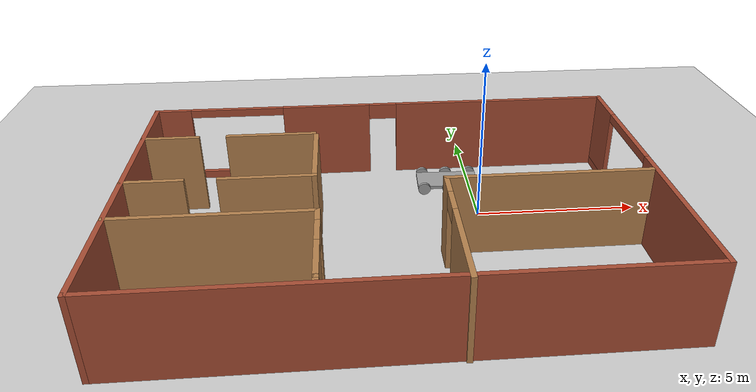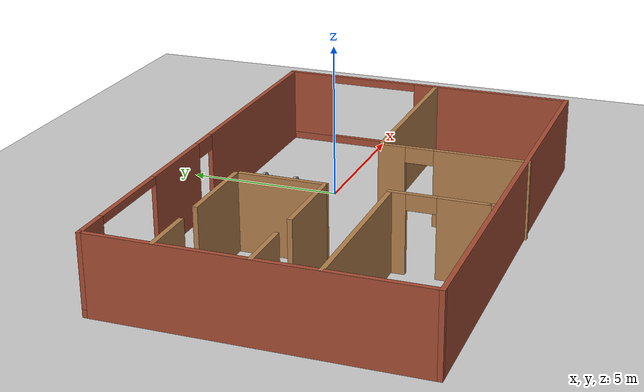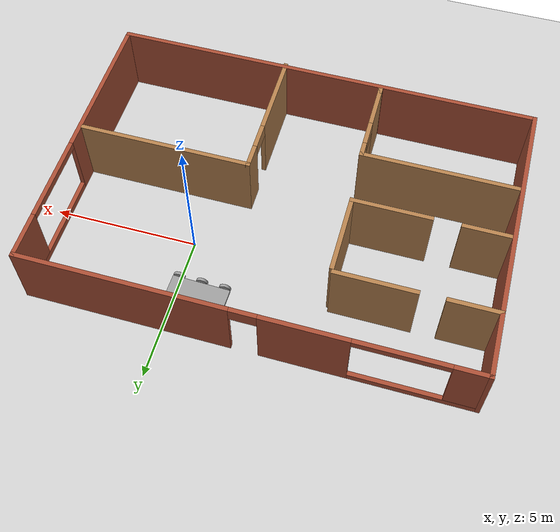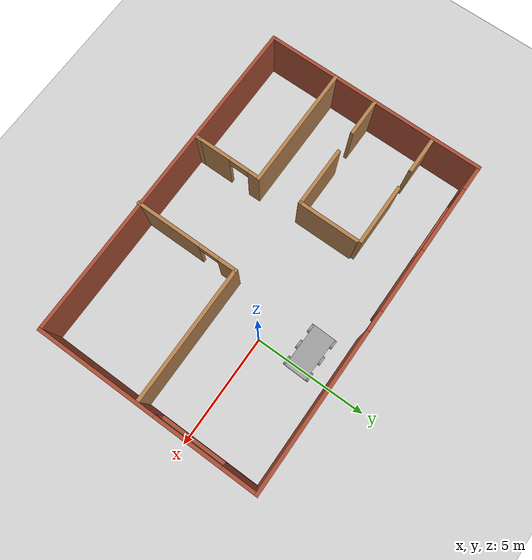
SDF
<sdf version="1.6">
 <world name="default">
  <model name="ground_plane">
   <static>1</static>
   <link name="link">
    <collision name="collision">
     <geometry><plane><normal>0 0 1</normal><size>100 100</size></plane></geometry>
     <surface><friction><ode><mu>100</mu><mu2>50</mu2></ode></friction></surface>
    </collision>
    <visual name="visual">
     <cast_shadows>0</cast_shadows>
     <geometry><plane><normal>0 0 1</normal><size>100 100</size></plane></geometry>
     <material>
      <script><uri>file://media/materials/scripts/gazebo.material</uri><name>Gazebo/Grey</name></script>
     </material>
    </visual>
   </link>
  </model>
  <model name="building">
   <pose>-2.80273 -1.68238 0 0 -0 0</pose>
   <link name="Wall_0">
    <pose>7.42489 0.032568 0 0 -0 1.5708</pose>
    <visual name="Wall_0_Visual_0">
     <pose>-2.30676 0 1.25 0 -0 0</pose>
     <geometry><box><size>5.38649 0.15 2.5</size></box></geometry>
     <material>
      <script><uri>file://media/materials/scripts/gazebo.material</uri><name>Gazebo/Bricks</name></script>
      <ambient>0.760784 0.662745 0.627451 1</ambient>
     </material>
     <meta><layer>0</layer></meta>
    </visual>
    <collision name="Wall_0_Collision_0">
     <geometry><box><size>5.38649 0.15 2.5</size></box></geometry>
     <pose>-2.30676 0 1.25 0 -0 0</pose>
    </collision>
    <visual name="Wall_0_Visual_1">
     <pose>2.69324 0 0.125 0 -0 0</pose>
     <geometry><box><size>4.61351 0.15 0.25</size></box></geometry>
     <material>
      <script><uri>file://media/materials/scripts/gazebo.material</uri><name>Gazebo/Bricks</name></script>
      <ambient>0.760784 0.662745 0.627451 1</ambient>
     </material>
     <meta><layer>0</layer></meta>
    </visual>
    <collision name="Wall_0_Collision_1">
     <geometry><box><size>4.61351 0.15 0.25</size></box></geometry>
     <pose>2.69324 0 0.125 0 -0 0</pose>
    </collision>
    <visual name="Wall_0_Visual_2">
     <pose>4.19324 0 1.375 0 -0 0</pose>
     <geometry><box><size>1.61351 0.15 2.25</size></box></geometry>
     <material>
      <script><uri>file://media/materials/scripts/gazebo.material</uri><name>Gazebo/Bricks</name></script>
      <ambient>0.760784 0.662745 0.627451 1</ambient>
     </material>
     <meta><layer>0</layer></meta>
    </visual>
    <collision name="Wall_0_Collision_2">
     <geometry><box><size>1.61351 0.15 2.25</size></box></geometry>
     <pose>4.19324 0 1.375 0 -0 0</pose>
    </collision>
    <visual name="Wall_0_Visual_3">
     <pose>1.88649 0 2.375 0 -0 0</pose>
     <geometry><box><size>3 0.15 0.25</size></box></geometry>
     <material>
      <script><uri>file://media/materials/scripts/gazebo.material</uri><name>Gazebo/Bricks</name></script>
      <ambient>0.760784 0.662745 0.627451 1</ambient>
     </material>
     <meta><layer>0</layer></meta>
    </visual>
    <collision name="Wall_0_Collision_3">
     <geometry><box><size>3 0.15 0.25</size></box></geometry>
     <pose>1.88649 0 2.375 0 -0 0</pose>
    </collision>
   </link>
   <link name="Wall_11">
    <pose>1.44888 -2.65807 0 0 -0 1.5708</pose>
    <visual name="Wall_11_Visual_0">
     <pose>-0.883594 0 1.25 0 -0 0</pose>
     <geometry><box><size>2.98281 0.15 2.5</size></box></geometry>
     <material>
      <script><uri>file://media/materials/scripts/gazebo.material</uri><name>Gazebo/Wood</name></script>
      <ambient>1 1 1 1</ambient>
     </material>
     <meta><layer>0</layer></meta>
    </visual>
    <collision name="Wall_11_Collision_0">
     <geometry><box><size>2.98281 0.15 2.5</size></box></geometry>
     <pose>-0.883594 0 1.25 0 -0 0</pose>
    </collision>
    <visual name="Wall_11_Visual_1">
     <pose>1.94141 0 1.25 0 -0 0</pose>
     <geometry><box><size>0.867187 0.15 2.5</size></box></geometry>
     <material>
      <script><uri>file://media/materials/scripts/gazebo.material</uri><name>Gazebo/Wood</name></script>
      <ambient>1 1 1 1</ambient>
     </material>
     <meta><layer>0</layer></meta>
    </visual>
    <collision name="Wall_11_Collision_1">
     <geometry><box><size>0.867187 0.15 2.5</size></box></geometry>
     <pose>1.94141 0 1.25 0 -0 0</pose>
    </collision>
    <visual name="Wall_11_Visual_2">
     <pose>1.05781 0 2.25 0 -0 0</pose>
     <geometry><box><size>0.9 0.15 0.5</size></box></geometry>
     <material>
      <script><uri>file://media/materials/scripts/gazebo.material</uri><name>Gazebo/Wood</name></script>
      <ambient>1 1 1 1</ambient>
     </material>
     <meta><layer>0</layer></meta>
    </visual>
    <collision name="Wall_11_Collision_2">
     <geometry><box><size>0.9 0.15 0.5</size></box></geometry>
     <pose>1.05781 0 2.25 0 -0 0</pose>
    </collision>
   </link>
   <link name="Wall_12">
    <collision name="Wall_12_Collision">
     <geometry><box><size>6 0.15 2.5</size></box></geometry>
     <pose>0 0 1.25 0 -0 0</pose>
    </collision>
    <visual name="Wall_12_Visual">
     <pose>0 0 1.25 0 -0 0</pose>
     <geometry><box><size>6 0.15 2.5</size></box></geometry>
     <material>
      <script><uri>file://media/materials/scripts/gazebo.material</uri><name>Gazebo/Wood</name></script>
      <ambient>1 1 1 1</ambient>
     </material>
     <meta><layer>0</layer></meta>
    </visual>
    <pose>4.37388 -0.358065 0 0 -0 0</pose>
   </link>
   <link name="Wall_14">
    <collision name="Wall_14_Collision">
     <geometry><box><size>5.5 0.15 2.5</size></box></geometry>
     <pose>0 0 1.25 0 -0 0</pose>
    </collision>
    <visual name="Wall_14_Visual">
     <pose>0 0 1.25 0 -0 0</pose>
     <geometry><box><size>5.5 0.15 2.5</size></box></geometry>
     <material>
      <script><uri>file://media/materials/scripts/gazebo.material</uri><name>Gazebo/Wood</name></script>
      <ambient>1 1 1 1</ambient>
     </material>
     <meta><layer>0</layer></meta>
    </visual>
    <pose>-4.73589 -1.80253 0 0 -0 0</pose>
   </link>
   <link name="Wall_15">
    <pose>-2.06089 -3.22753 0 0 0 -1.5708</pose>
    <visual name="Wall_15_Visual_0">
     <pose>-1.22226 0 1.25 0 -0 0</pose>
     <geometry><box><size>0.555478 0.15 2.5</size></box></geometry>
     <material>
      <script><uri>file://media/materials/scripts/gazebo.material</uri><name>Gazebo/Wood</name></script>
      <ambient>1 1 1 1</ambient>
     </material>
     <meta><layer>0</layer></meta>
    </visual>
    <collision name="Wall_15_Collision_0">
     <geometry><box><size>0.555478 0.15 2.5</size></box></geometry>
     <pose>-1.22226 0 1.25 0 -0 0</pose>
    </collision>
    <visual name="Wall_15_Visual_1">
     <pose>0.727739 0 1.25 0 -0 0</pose>
     <geometry><box><size>1.54452 0.15 2.5</size></box></geometry>
     <material>
      <script><uri>file://media/materials/scripts/gazebo.material</uri><name>Gazebo/Wood</name></script>
      <ambient>1 1 1 1</ambient>
     </material>
     <meta><layer>0</layer></meta>
    </visual>
    <collision name="Wall_15_Collision_1">
     <geometry><box><size>1.54452 0.15 2.5</size></box></geometry>
     <pose>0.727739 0 1.25 0 -0 0</pose>
    </collision>
    <visual name="Wall_15_Visual_2">
     <pose>-0.494522 0 2.25 0 -0 0</pose>
     <geometry><box><size>0.9 0.15 0.5</size></box></geometry>
     <material>
      <script><uri>file://media/materials/scripts/gazebo.material</uri><name>Gazebo/Wood</name></script>
      <ambient>1 1 1 1</ambient>
     </material>
     <meta><layer>0</layer></meta>
    </visual>
    <collision name="Wall_15_Collision_2">
     <geometry><box><size>0.9 0.15 0.5</size></box></geometry>
     <pose>-0.494522 0 2.25 0 -0 0</pose>
    </collision>
   </link>
   <link name="Wall_16">
    <collision name="Wall_16_Collision">
     <geometry><box><size>0.25 0.15 2.5</size></box></geometry>
     <pose>0 0 1.25 0 -0 0</pose>
    </collision>
    <visual name="Wall_16_Visual">
     <pose>0 0 1.25 0 -0 0</pose>
     <geometry><box><size>0.25 0.15 2.5</size></box></geometry>
     <material>
      <script><uri>file://media/materials/scripts/gazebo.material</uri><name>Gazebo/Wood</name></script>
      <ambient>1 1 1 1</ambient>
     </material>
     <meta><layer>0</layer></meta>
    </visual>
    <pose>-2.06089 -4.70253 0 0 0 -1.5708</pose>
   </link>
   <link name="Wall_18">
    <collision name="Wall_18_Collision">
     <geometry><box><size>1.75 0.15 2.5</size></box></geometry>
     <pose>0 0 1.25 0 -0 0</pose>
    </collision>
    <visual name="Wall_18_Visual">
     <pose>0 0 1.25 0 -0 0</pose>
     <geometry><box><size>1.75 0.15 2.5</size></box></geometry>
     <material>
      <script><uri>file://media/materials/scripts/gazebo.material</uri><name>Gazebo/Wood</name></script>
      <ambient>1 1 1 1</ambient>
     </material>
     <meta><layer>0</layer></meta>
    </visual>
    <pose>-6.61089 0.098882 0 0 -0 0</pose>
   </link>
   <link name="Wall_20">
    <collision name="Wall_20_Collision">
     <geometry><box><size>1.75 0.15 2.5</size></box></geometry>
     <pose>0 0 1.25 0 -0 0</pose>
    </collision>
    <visual name="Wall_20_Visual">
     <pose>0 0 1.25 0 -0 0</pose>
     <geometry><box><size>1.75 0.15 2.5</size></box></geometry>
     <material>
      <script><uri>file://media/materials/scripts/gazebo.material</uri><name>Gazebo/Wood</name></script>
      <ambient>1 1 1 1</ambient>
     </material>
     <meta><layer>0</layer></meta>
    </visual>
    <pose>-6.61089 2.84986 0 0 -0 0</pose>
   </link>
   <link name="Wall_22">
    <collision name="Wall_22_Collision">
     <geometry><box><size>2.75 0.15 2.5</size></box></geometry>
     <pose>0 0 1.25 0 -0 0</pose>
    </collision>
    <visual name="Wall_22_Visual">
     <pose>0 0 1.25 0 -0 0</pose>
     <geometry><box><size>2.75 0.15 2.5</size></box></geometry>
     <material>
      <script><uri>file://media/materials/scripts/gazebo.material</uri><name>Gazebo/Wood</name></script>
      <ambient>1 1 1 1</ambient>
     </material>
     <meta><layer>0</layer></meta>
    </visual>
    <pose>-3.56219 2.84986 0 0 -0 0</pose>
   </link>
   <link name="Wall_30">
    <collision name="Wall_30_Collision">
     <geometry><box><size>2.75 0.15 2.5</size></box></geometry>
     <pose>0 0 1.25 0 -0 0</pose>
    </collision>
    <visual name="Wall_30_Visual">
     <pose>0 0 1.25 0 -0 0</pose>
     <geometry><box><size>2.75 0.15 2.5</size></box></geometry>
     <material>
      <script><uri>file://media/materials/scripts/gazebo.material</uri><name>Gazebo/Wood</name></script>
      <ambient>1 1 1 1</ambient>
     </material>
     <meta><layer>0</layer></meta>
    </visual>
    <pose>-3.48128 0.098882 0 0 -0 0</pose>
   </link>
   <link name="Wall_34">
    <collision name="Wall_34_Collision">
     <geometry><box><size>2.75 0.15 2.5</size></box></geometry>
     <pose>0 0 1.25 0 -0 0</pose>
    </collision>
    <visual name="Wall_34_Visual">
     <pose>0 0 1.25 0 -0 0</pose>
     <geometry><box><size>2.75 0.15 2.5</size></box></geometry>
     <material>
      <script><uri>file://media/materials/scripts/gazebo.material</uri><name>Gazebo/Wood</name></script>
      <ambient>1 1 1 1</ambient>
     </material>
     <meta><layer>0</layer></meta>
    </visual>
    <pose>-2.18128 1.39888 0 0 -0 1.5708</pose>
   </link>
   <link name="Wall_5">
    <collision name="Wall_5_Collision">
     <geometry><box><size>15 0.15 2.5</size></box></geometry>
     <pose>0 0 1.25 0 -0 0</pose>
    </collision>
    <visual name="Wall_5_Visual">
     <pose>0 0 1.25 0 -0 0</pose>
     <geometry><box><size>15 0.15 2.5</size></box></geometry>
     <material>
      <script><uri>file://media/materials/scripts/gazebo.material</uri><name>Gazebo/Bricks</name></script>
      <ambient>1 0 0 1</ambient>
     </material>
     <meta><layer>0</layer></meta>
    </visual>
    <pose>-0.000108 -4.89243 0 0 -0 3.14159</pose>
   </link>
   <link name="Wall_7">
    <pose>0.000109 4.95782 0 0 -0 3.14156</pose>
    <visual name="Wall_7_Visual_0">
     <pose>-3.97108 0 1.25 0 -0 0</pose>
     <geometry><box><size>7.05785 0.15 2.5</size></box></geometry>
     <material>
      <script><uri>file://media/materials/scripts/gazebo.material</uri><name>Gazebo/Bricks</name></script>
      <ambient>1 0 0 1</ambient>
     </material>
     <meta><layer>0</layer></meta>
    </visual>
    <collision name="Wall_7_Collision_0">
     <geometry><box><size>7.05785 0.15 2.5</size></box></geometry>
     <pose>-3.97108 0 1.25 0 -0 0</pose>
    </collision>
    <visual name="Wall_7_Visual_1">
     <pose>1.88985 0 1.25 0 -0 0</pose>
     <geometry><box><size>2.864 0.15 2.5</size></box></geometry>
     <material>
      <script><uri>file://media/materials/scripts/gazebo.material</uri><name>Gazebo/Bricks</name></script>
      <ambient>1 0 0 1</ambient>
     </material>
     <meta><layer>0</layer></meta>
    </visual>
    <collision name="Wall_7_Collision_1">
     <geometry><box><size>2.864 0.15 2.5</size></box></geometry>
     <pose>1.88985 0 1.25 0 -0 0</pose>
    </collision>
    <visual name="Wall_7_Visual_2">
     <pose>5.41092 0 0.125 0 -0 0</pose>
     <geometry><box><size>4.17815 0.15 0.25</size></box></geometry>
     <material>
      <script><uri>file://media/materials/scripts/gazebo.material</uri><name>Gazebo/Bricks</name></script>
      <ambient>1 0 0 1</ambient>
     </material>
     <meta><layer>0</layer></meta>
    </visual>
    <collision name="Wall_7_Collision_2">
     <geometry><box><size>4.17815 0.15 0.25</size></box></geometry>
     <pose>5.41092 0 0.125 0 -0 0</pose>
    </collision>
    <visual name="Wall_7_Visual_3">
     <pose>6.91092 0 1.375 0 -0 0</pose>
     <geometry><box><size>1.17815 0.15 2.25</size></box></geometry>
     <material>
      <script><uri>file://media/materials/scripts/gazebo.material</uri><name>Gazebo/Bricks</name></script>
      <ambient>1 0 0 1</ambient>
     </material>
     <meta><layer>0</layer></meta>
    </visual>
    <collision name="Wall_7_Collision_3">
     <geometry><box><size>1.17815 0.15 2.25</size></box></geometry>
     <pose>6.91092 0 1.375 0 -0 0</pose>
    </collision>
    <visual name="Wall_7_Visual_4">
     <pose>0.007847 0 2.25 0 -0 0</pose>
     <geometry><box><size>0.9 0.15 0.5</size></box></geometry>
     <material>
      <script><uri>file://media/materials/scripts/gazebo.material</uri><name>Gazebo/Bricks</name></script>
      <ambient>1 0 0 1</ambient>
     </material>
     <meta><layer>0</layer></meta>
    </visual>
    <collision name="Wall_7_Collision_4">
     <geometry><box><size>0.9 0.15 0.5</size></box></geometry>
     <pose>0.007847 0 2.25 0 -0 0</pose>
    </collision>
    <visual name="Wall_7_Visual_5">
     <pose>4.82185 0 2.375 0 -0 0</pose>
     <geometry><box><size>3 0.15 0.25</size></box></geometry>
     <material>
      <script><uri>file://media/materials/scripts/gazebo.material</uri><name>Gazebo/Bricks</name></script>
      <ambient>1 0 0 1</ambient>
     </material>
     <meta><layer>0</layer></meta>
    </visual>
    <collision name="Wall_7_Collision_5">
     <geometry><box><size>3 0.15 0.25</size></box></geometry>
     <pose>4.82185 0 2.375 0 -0 0</pose>
    </collision>
   </link>
   <link name="Wall_9">
    <collision name="Wall_9_Collision">
     <geometry><box><size>10.0005 0.15 2.5</size></box></geometry>
     <pose>0 0 1.25 0 -0 0</pose>
    </collision>
    <visual name="Wall_9_Visual">
     <pose>0 0 1.25 0 -0 0</pose>
     <geometry><box><size>10.0005 0.15 2.5</size></box></geometry>
     <material>
      <script><uri>file://media/materials/scripts/gazebo.material</uri><name>Gazebo/Bricks</name></script>
      <ambient>1 0 0 1</ambient>
     </material>
     <meta><layer>0</layer></meta>
    </visual>
    <pose>-7.42489 0.032815 0 0 0 -1.57084</pose>
   </link>
   <static>1</static>
  </model>
  <model name="service_robot_0">
   <link name="link_0">
    <inertial>
     <mass>1</mass>
     <inertia>
      <ixx>0.166667</ixx>
      <ixy>0</ixy>
      <ixz>0</ixz>
      <iyy>0.166667</iyy>
      <iyz>0</iyz>
      <izz>0.166667</izz>
     </inertia>
    </inertial>
    <visual name="visual">
     <geometry><box><size>2 1 0.1</size></box></geometry>
     <material>
      <lighting>1</lighting>
      <script><uri>file://media/materials/scripts/gazebo.material</uri><name>Gazebo/Grey</name></script>
      <shader type="pixel"><normal_map>__default__</normal_map></shader>
      <ambient>0.3 0.3 0.3 1</ambient>
      <diffuse>0.7 0.7 0.7 1</diffuse>
      <specular>0.01 0.01 0.01 1</specular>
      <emissive>0 0 0 1</emissive>
     </material>
    </visual>
    <collision name="collision">
     <geometry><box><size>2 1 0.1</size></box></geometry>
     <surface>
      <friction>
       <ode><mu>1</mu><mu2>1</mu2><fdir1>0 0 0</fdir1><slip1>0</slip1><slip2>0</slip2></ode>
       <torsional>
        <coefficient>1</coefficient>
        <patch_radius>0</patch_radius>
        <surface_radius>0</surface_radius>
        <use_patch_radius>1</use_patch_radius>
        <ode><slip>0</slip></ode>
       </torsional>
      </friction>
      <bounce><restitution_coefficient>0</restitution_coefficient><threshold>1e+06</threshold></bounce>
      <contact>
       <collide_without_contact>0</collide_without_contact>
       <collide_without_contact_bitmask>1</collide_without_contact_bitmask>
       <collide_bitmask>1</collide_bitmask>
       <ode>
        <soft_cfm>0</soft_cfm>
        <soft_erp>0.2</soft_erp>
        <kp>1e+13</kp>
        <kd>1</kd>
        <max_vel>0.01</max_vel>
        <min_depth>0</min_depth>
       </ode>
       <bullet>
        <split_impulse>1</split_impulse>
        <split_impulse_penetration_threshold>-0.01</split_impulse_penetration_threshold>
        <soft_cfm>0</soft_cfm>
        <soft_erp>0.2</soft_erp>
        <kp>1e+13</kp>
        <kd>1</kd>
       </bullet>
      </contact>
     </surface>
    </collision>
   </link>
   <link name="link_1">
    <pose>-0.8 -0.550019 0 1.5707 -0 0</pose>
    <inertial>
     <mass>1</mass>
     <inertia><ixx>0.145833</ixx><ixy>0</ixy><ixz>0</ixz><iyy>0.145833</iyy><iyz>0</iyz><izz>0.125</izz></inertia>
    </inertial>
    <visual name="visual">
     <geometry><cylinder><radius>0.2</radius><length>0.1</length></cylinder></geometry>
     <material>
      <lighting>1</lighting>
      <script><uri>file://media/materials/scripts/gazebo.material</uri><name>Gazebo/Grey</name></script>
      <shader type="pixel"><normal_map>__default__</normal_map></shader>
      <ambient>0.3 0.3 0.3 1</ambient>
      <diffuse>0.7 0.7 0.7 1</diffuse>
      <specular>0.01 0.01 0.01 1</specular>
      <emissive>0 0 0 1</emissive>
     </material>
    </visual>
    <collision name="collision">
     <geometry><cylinder><radius>0.2</radius><length>0.1</length></cylinder></geometry>
     <surface>
      <friction>
       <ode><mu>1</mu><mu2>1</mu2><fdir1>0 0 0</fdir1><slip1>0</slip1><slip2>0</slip2></ode>
       <torsional>
        <coefficient>1</coefficient>
        <patch_radius>0</patch_radius>
        <surface_radius>0</surface_radius>
        <use_patch_radius>1</use_patch_radius>
        <ode><slip>0</slip></ode>
       </torsional>
      </friction>
      <bounce><restitution_coefficient>0</restitution_coefficient><threshold>1e+06</threshold></bounce>
      <contact>
       <collide_without_contact>0</collide_without_contact>
       <collide_without_contact_bitmask>1</collide_without_contact_bitmask>
       <collide_bitmask>1</collide_bitmask>
       <ode>
        <soft_cfm>0</soft_cfm>
        <soft_erp>0.2</soft_erp>
        <kp>1e+13</kp>
        <kd>1</kd>
        <max_vel>0.01</max_vel>
        <min_depth>0</min_depth>
       </ode>
       <bullet>
        <split_impulse>1</split_impulse>
        <split_impulse_penetration_threshold>-0.01</split_impulse_penetration_threshold>
        <soft_cfm>0</soft_cfm>
        <soft_erp>0.2</soft_erp>
        <kp>1e+13</kp>
        <kd>1</kd>
       </bullet>
      </contact>
     </surface>
    </collision>
   </link>
   <link name="link_1_clone">
    <pose>0 0.550019 0 1.5707 -0 0</pose>
    <inertial>
     <mass>1</mass>
     <inertia><ixx>0.145833</ixx><ixy>0</ixy><ixz>0</ixz><iyy>0.145833</iyy><iyz>0</iyz><izz>0.125</izz></inertia>
    </inertial>
    <visual name="visual">
     <geometry><cylinder><radius>0.2</radius><length>0.1</length></cylinder></geometry>
     <material>
      <lighting>1</lighting>
      <script><uri>file://media/materials/scripts/gazebo.material</uri><name>Gazebo/Grey</name></script>
      <shader type="pixel"><normal_map>__default__</normal_map></shader>
      <ambient>0.3 0.3 0.3 1</ambient>
      <diffuse>0.7 0.7 0.7 1</diffuse>
      <specular>0.01 0.01 0.01 1</specular>
      <emissive>0 0 0 1</emissive>
     </material>
    </visual>
    <collision name="collision">
     <geometry><cylinder><radius>0.2</radius><length>0.1</length></cylinder></geometry>
     <surface>
      <friction>
       <ode><mu>1</mu><mu2>1</mu2><fdir1>0 0 0</fdir1><slip1>0</slip1><slip2>0</slip2></ode>
       <torsional>
        <coefficient>1</coefficient>
        <patch_radius>0</patch_radius>
        <surface_radius>0</surface_radius>
        <use_patch_radius>1</use_patch_radius>
        <ode><slip>0</slip></ode>
       </torsional>
      </friction>
      <bounce><restitution_coefficient>0</restitution_coefficient><threshold>1e+06</threshold></bounce>
      <contact>
       <collide_without_contact>0</collide_without_contact>
       <collide_without_contact_bitmask>1</collide_without_contact_bitmask>
       <collide_bitmask>1</collide_bitmask>
       <ode>
        <soft_cfm>0</soft_cfm>
        <soft_erp>0.2</soft_erp>
        <kp>1e+13</kp>
        <kd>1</kd>
        <max_vel>0.01</max_vel>
        <min_depth>0</min_depth>
       </ode>
       <bullet>
        <split_impulse>1</split_impulse>
        <split_impulse_penetration_threshold>-0.01</split_impulse_penetration_threshold>
        <soft_cfm>0</soft_cfm>
        <soft_erp>0.2</soft_erp>
        <kp>1e+13</kp>
        <kd>1</kd>
       </bullet>
      </contact>
     </surface>
    </collision>
   </link>
   <link name="link_1_clone_0">
    <pose>0 -0.550019 0 1.5707 -0 0</pose>
    <inertial>
     <mass>1</mass>
     <inertia><ixx>0.145833</ixx><ixy>0</ixy><ixz>0</ixz><iyy>0.145833</iyy><iyz>0</iyz><izz>0.125</izz></inertia>
    </inertial>
    <visual name="visual">
     <geometry><cylinder><radius>0.2</radius><length>0.1</length></cylinder></geometry>
     <material>
      <lighting>1</lighting>
      <script><uri>file://media/materials/scripts/gazebo.material</uri><name>Gazebo/Grey</name></script>
      <shader type="pixel"><normal_map>__default__</normal_map></shader>
      <ambient>0.3 0.3 0.3 1</ambient>
      <diffuse>0.7 0.7 0.7 1</diffuse>
      <specular>0.01 0.01 0.01 1</specular>
      <emissive>0 0 0 1</emissive>
     </material>
    </visual>
    <collision name="collision">
     <geometry><cylinder><radius>0.2</radius><length>0.1</length></cylinder></geometry>
     <surface>
      <friction>
       <ode><mu>1</mu><mu2>1</mu2><fdir1>0 0 0</fdir1><slip1>0</slip1><slip2>0</slip2></ode>
       <torsional>
        <coefficient>1</coefficient>
        <patch_radius>0</patch_radius>
        <surface_radius>0</surface_radius>
        <use_patch_radius>1</use_patch_radius>
        <ode><slip>0</slip></ode>
       </torsional>
      </friction>
      <bounce><restitution_coefficient>0</restitution_coefficient><threshold>1e+06</threshold></bounce>
      <contact>
       <collide_without_contact>0</collide_without_contact>
       <collide_without_contact_bitmask>1</collide_without_contact_bitmask>
       <collide_bitmask>1</collide_bitmask>
       <ode>
        <soft_cfm>0</soft_cfm>
        <soft_erp>0.2</soft_erp>
        <kp>1e+13</kp>
        <kd>1</kd>
        <max_vel>0.01</max_vel>
        <min_depth>0</min_depth>
       </ode>
       <bullet>
        <split_impulse>1</split_impulse>
        <split_impulse_penetration_threshold>-0.01</split_impulse_penetration_threshold>
        <soft_cfm>0</soft_cfm>
        <soft_erp>0.2</soft_erp>
        <kp>1e+13</kp>
        <kd>1</kd>
       </bullet>
      </contact>
     </surface>
    </collision>
   </link>
   <link name="link_1_clone_1">
    <pose>0.8 0.550019 0 1.5707 -0 0</pose>
    <inertial>
     <mass>1</mass>
     <inertia><ixx>0.145833</ixx><ixy>0</ixy><ixz>0</ixz><iyy>0.145833</iyy><iyz>0</iyz><izz>0.125</izz></inertia>
    </inertial>
    <visual name="visual">
     <geometry><cylinder><radius>0.2</radius><length>0.1</length></cylinder></geometry>
     <material>
      <lighting>1</lighting>
      <script><uri>file://media/materials/scripts/gazebo.material</uri><name>Gazebo/Grey</name></script>
      <shader type="pixel"><normal_map>__default__</normal_map></shader>
      <ambient>0.3 0.3 0.3 1</ambient>
      <diffuse>0.7 0.7 0.7 1</diffuse>
      <specular>0.01 0.01 0.01 1</specular>
      <emissive>0 0 0 1</emissive>
     </material>
    </visual>
    <collision name="collision">
     <geometry><cylinder><radius>0.2</radius><length>0.1</length></cylinder></geometry>
     <surface>
      <friction>
       <ode><mu>1</mu><mu2>1</mu2><fdir1>0 0 0</fdir1><slip1>0</slip1><slip2>0</slip2></ode>
       <torsional>
        <coefficient>1</coefficient>
        <patch_radius>0</patch_radius>
        <surface_radius>0</surface_radius>
        <use_patch_radius>1</use_patch_radius>
        <ode><slip>0</slip></ode>
       </torsional>
      </friction>
      <bounce><restitution_coefficient>0</restitution_coefficient><threshold>1e+06</threshold></bounce>
      <contact>
       <collide_without_contact>0</collide_without_contact>
       <collide_without_contact_bitmask>1</collide_without_contact_bitmask>
       <collide_bitmask>1</collide_bitmask>
       <ode>
        <soft_cfm>0</soft_cfm>
        <soft_erp>0.2</soft_erp>
        <kp>1e+13</kp>
        <kd>1</kd>
        <max_vel>0.01</max_vel>
        <min_depth>0</min_depth>
       </ode>
       <bullet>
        <split_impulse>1</split_impulse>
        <split_impulse_penetration_threshold>-0.01</split_impulse_penetration_threshold>
        <soft_cfm>0</soft_cfm>
        <soft_erp>0.2</soft_erp>
        <kp>1e+13</kp>
        <kd>1</kd>
       </bullet>
      </contact>
     </surface>
    </collision>
   </link>
   <link name="link_1_clone_2">
    <pose>0.8 -0.550019 0 1.5707 -0 0</pose>
    <inertial>
     <mass>1</mass>
     <inertia><ixx>0.145833</ixx><ixy>0</ixy><ixz>0</ixz><iyy>0.145833</iyy><iyz>0</iyz><izz>0.125</izz></inertia>
    </inertial>
    <visual name="visual">
     <geometry><cylinder><radius>0.2</radius><length>0.1</length></cylinder></geometry>
     <material>
      <lighting>1</lighting>
      <script><uri>file://media/materials/scripts/gazebo.material</uri><name>Gazebo/Grey</name></script>
      <shader type="pixel"><normal_map>__default__</normal_map></shader>
      <ambient>0.3 0.3 0.3 1</ambient>
      <diffuse>0.7 0.7 0.7 1</diffuse>
      <specular>0.01 0.01 0.01 1</specular>
      <emissive>0 0 0 1</emissive>
     </material>
    </visual>
    <collision name="collision">
     <geometry><cylinder><radius>0.2</radius><length>0.1</length></cylinder></geometry>
     <surface>
      <friction>
       <ode><mu>1</mu><mu2>1</mu2><fdir1>0 0 0</fdir1><slip1>0</slip1><slip2>0</slip2></ode>
       <torsional>
        <coefficient>1</coefficient>
        <patch_radius>0</patch_radius>
        <surface_radius>0</surface_radius>
        <use_patch_radius>1</use_patch_radius>
        <ode><slip>0</slip></ode>
       </torsional>
      </friction>
      <bounce><restitution_coefficient>0</restitution_coefficient><threshold>1e+06</threshold></bounce>
      <contact>
       <collide_without_contact>0</collide_without_contact>
       <collide_without_contact_bitmask>1</collide_without_contact_bitmask>
       <collide_bitmask>1</collide_bitmask>
       <ode>
        <soft_cfm>0</soft_cfm>
        <soft_erp>0.2</soft_erp>
        <kp>1e+13</kp>
        <kd>1</kd>
        <max_vel>0.01</max_vel>
        <min_depth>0</min_depth>
       </ode>
       <bullet>
        <split_impulse>1</split_impulse>
        <split_impulse_penetration_threshold>-0.01</split_impulse_penetration_threshold>
        <soft_cfm>0</soft_cfm>
        <soft_erp>0.2</soft_erp>
        <kp>1e+13</kp>
        <kd>1</kd>
       </bullet>
      </contact>
     </surface>
    </collision>
   </link>
   <link name="link_1_clone_3">
    <pose>-0.8 0.550019 0 1.5707 -0 0</pose>
    <inertial>
     <mass>1</mass>
     <inertia><ixx>0.145833</ixx><ixy>0</ixy><ixz>0</ixz><iyy>0.145833</iyy><iyz>0</iyz><izz>0.125</izz></inertia>
    </inertial>
    <visual name="visual">
     <geometry><cylinder><radius>0.2</radius><length>0.1</length></cylinder></geometry>
     <material>
      <lighting>1</lighting>
      <script><uri>file://media/materials/scripts/gazebo.material</uri><name>Gazebo/Grey</name></script>
      <shader type="pixel"><normal_map>__default__</normal_map></shader>
      <ambient>0.3 0.3 0.3 1</ambient>
      <diffuse>0.7 0.7 0.7 1</diffuse>
      <specular>0.01 0.01 0.01 1</specular>
      <emissive>0 0 0 1</emissive>
     </material>
    </visual>
    <collision name="collision">
     <geometry><cylinder><radius>0.2</radius><length>0.1</length></cylinder></geometry>
     <surface>
      <friction>
       <ode><mu>1</mu><mu2>1</mu2><fdir1>0 0 0</fdir1><slip1>0</slip1><slip2>0</slip2></ode>
       <torsional>
        <coefficient>1</coefficient>
        <patch_radius>0</patch_radius>
        <surface_radius>0</surface_radius>
        <use_patch_radius>1</use_patch_radius>
        <ode><slip>0</slip></ode>
       </torsional>
      </friction>
      <bounce><restitution_coefficient>0</restitution_coefficient><threshold>1e+06</threshold></bounce>
      <contact>
       <collide_without_contact>0</collide_without_contact>
       <collide_without_contact_bitmask>1</collide_without_contact_bitmask>
       <collide_bitmask>1</collide_bitmask>
       <ode>
        <soft_cfm>0</soft_cfm>
        <soft_erp>0.2</soft_erp>
        <kp>1e+13</kp>
        <kd>1</kd>
        <max_vel>0.01</max_vel>
        <min_depth>0</min_depth>
       </ode>
       <bullet>
        <split_impulse>1</split_impulse>
        <split_impulse_penetration_threshold>-0.01</split_impulse_penetration_threshold>
        <soft_cfm>0</soft_cfm>
        <soft_erp>0.2</soft_erp>
        <kp>1e+13</kp>
        <kd>1</kd>
       </bullet>
      </contact>
     </surface>
    </collision>
   </link>
   <joint name="link_0_JOINT_0" type="revolute">
    <parent>link_0</parent>
    <child>link_1_clone_1</child>
    <axis>
     <xyz>0 0 1</xyz>
     <use_parent_model_frame>0</use_parent_model_frame>
     <limit>
      <lower>-1.79769e+308</lower>
      <upper>1.79769e+308</upper>
      <effort>-1</effort>
      <velocity>-1</velocity>
     </limit>
     <dynamics>
      <spring_reference>0</spring_reference>
      <spring_stiffness>0</spring_stiffness>
      <damping>0</damping>
     </dynamics>
    </axis>
    <physics>
     <ode><limit><cfm>0</cfm><erp>0.2</erp></limit><suspension><cfm>0</cfm><erp>0.2</erp></suspension></ode>
    </physics>
   </joint>
   <joint name="link_0_JOINT_1" type="revolute">
    <parent>link_0</parent>
    <child>link_1_clone_2</child>
    <axis>
     <xyz>0 0 1</xyz>
     <use_parent_model_frame>0</use_parent_model_frame>
     <limit>
      <lower>-1.79769e+308</lower>
      <upper>1.79769e+308</upper>
      <effort>-1</effort>
      <velocity>-1</velocity>
     </limit>
     <dynamics>
      <spring_reference>0</spring_reference>
      <spring_stiffness>0</spring_stiffness>
      <damping>0</damping>
     </dynamics>
    </axis>
    <physics>
     <ode><limit><cfm>0</cfm><erp>0.2</erp></limit><suspension><cfm>0</cfm><erp>0.2</erp></suspension></ode>
    </physics>
   </joint>
   <joint name="link_0_JOINT_2" type="revolute">
    <parent>link_0</parent>
    <child>link_1_clone_0</child>
    <axis>
     <xyz>0 0 1</xyz>
     <use_parent_model_frame>0</use_parent_model_frame>
     <limit>
      <lower>-1.79769e+308</lower>
      <upper>1.79769e+308</upper>
      <effort>-1</effort>
      <velocity>-1</velocity>
     </limit>
     <dynamics>
      <spring_reference>0</spring_reference>
      <spring_stiffness>0</spring_stiffness>
      <damping>0</damping>
     </dynamics>
    </axis>
    <physics>
     <ode><limit><cfm>0</cfm><erp>0.2</erp></limit><suspension><cfm>0</cfm><erp>0.2</erp></suspension></ode>
    </physics>
   </joint>
   <joint name="link_0_JOINT_3" type="revolute">
    <parent>link_0</parent>
    <child>link_1_clone</child>
    <axis>
     <xyz>0 0 1</xyz>
     <use_parent_model_frame>0</use_parent_model_frame>
     <limit>
      <lower>-1.79769e+308</lower>
      <upper>1.79769e+308</upper>
      <effort>-1</effort>
      <velocity>-1</velocity>
     </limit>
     <dynamics>
      <spring_reference>0</spring_reference>
      <spring_stiffness>0</spring_stiffness>
      <damping>0</damping>
     </dynamics>
    </axis>
    <physics>
     <ode><limit><cfm>0</cfm><erp>0.2</erp></limit><suspension><cfm>0</cfm><erp>0.2</erp></suspension></ode>
    </physics>
   </joint>
   <joint name="link_0_JOINT_4" type="revolute">
    <parent>link_0</parent>
    <child>link_1</child>
    <axis>
     <xyz>0 0 1</xyz>
     <use_parent_model_frame>0</use_parent_model_frame>
     <limit>
      <lower>-1.79769e+308</lower>
      <upper>1.79769e+308</upper>
      <effort>-1</effort>
      <velocity>-1</velocity>
     </limit>
     <dynamics>
      <spring_reference>0</spring_reference>
      <spring_stiffness>0</spring_stiffness>
      <damping>0</damping>
     </dynamics>
    </axis>
    <physics>
     <ode><limit><cfm>0</cfm><erp>0.2</erp></limit><suspension><cfm>0</cfm><erp>0.2</erp></suspension></ode>
    </physics>
   </joint>
   <joint name="link_0_JOINT_5" type="revolute">
    <parent>link_0</parent>
    <child>link_1_clone_3</child>
    <axis>
     <xyz>1 0 0</xyz>
     <use_parent_model_frame>0</use_parent_model_frame>
     <limit>
      <lower>-1.79769e+308</lower>
      <upper>1.79769e+308</upper>
      <effort>-1</effort>
      <velocity>-1</velocity>
     </limit>
     <dynamics>
      <spring_reference>0</spring_reference>
      <spring_stiffness>0</spring_stiffness>
      <damping>0</damping>
     </dynamics>
    </axis>
    <physics>
     <ode><limit><cfm>0</cfm><erp>0.2</erp></limit><suspension><cfm>0</cfm><erp>0.2</erp></suspension></ode>
    </physics>
   </joint>
   <static>0</static>
   <pose>-0.744444 1.96931 0.200005 1e-06 2e-06 -0.024151</pose>
  </model>
 </world>
</sdf>
